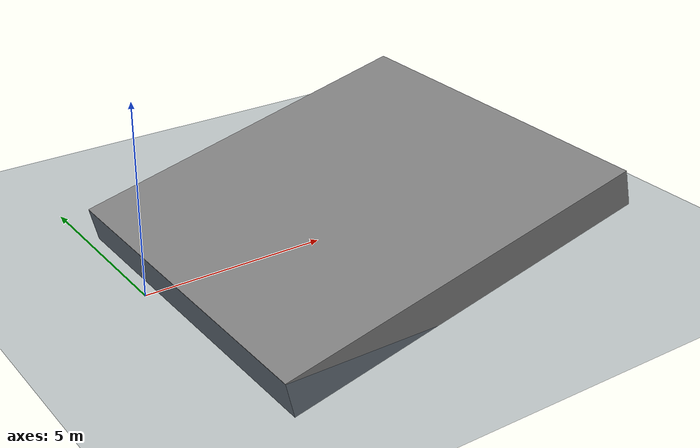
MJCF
<mujoco model="slope_3">
  <!-- Terrain Type: slope, Level: 3, Slope angle (degrees): 13.5499 -->
  <statistic center="0 0 0.1" extent="0.8" />
  <visual>
    <headlight diffuse="0.6 0.6 0.6" ambient="0.3 0.3 0.3" specular="0 0 0" />
    <rgba haze="0.15 0.25 0.35 1" />
    <global azimuth="-130" elevation="-20" />
  </visual>
  <asset>
    <texture type="skybox" builtin="gradient" rgb1="0.3 0.5 0.7" rgb2="0 0 0" width="512" height="3072" />
    <texture type="2d" name="groundplane" builtin="checker" mark="edge" rgb1="0.2 0.3 0.4" rgb2="0.1 0.2 0.3" markrgb="0.8 0.8 0.8" width="300" height="300" />
    <material name="groundplane" texture="groundplane" texuniform="true" texrepeat="5 5" reflectance="0.0" />
  </asset>
  <worldbody>
    <light pos="0 0 1.5" dir="0 0 -1" directional="true" />
    <geom name="floor" size="0 0 0.05" type="plane" material="groundplane" />
    <geom pos="5.917146033713848 0.0 0.7189168725566442" type="box" size="5.143153215683935 5.0 0.5" quat="0.9930171838610629 0.0 -0.11796979510300112 0.0" />
  </worldbody>
</mujoco>
